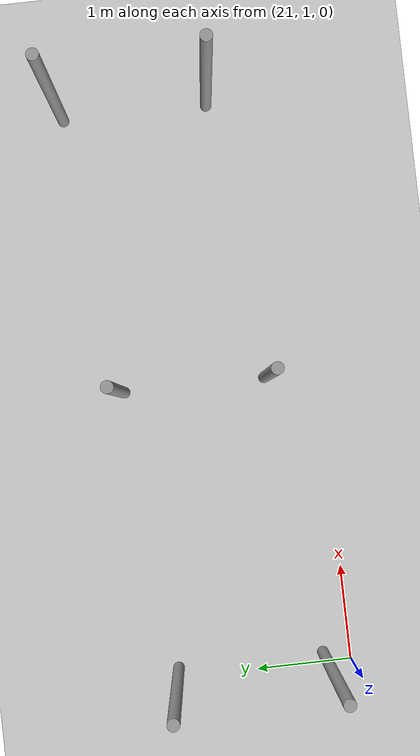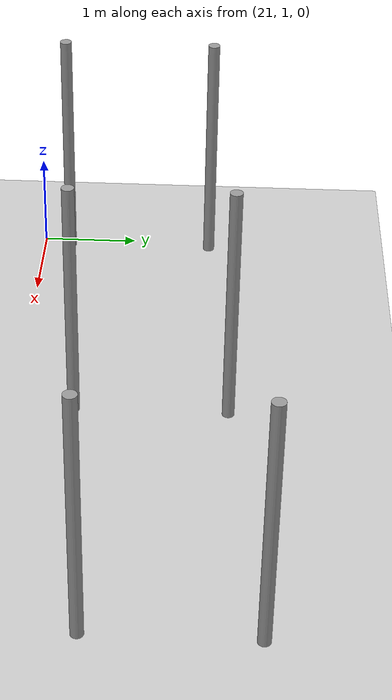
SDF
<sdf version="1.6">
 <world name="default">
  <model name="ground_plane">
   <static>1</static>
   <link name="link">
    <collision name="collision">
     <geometry><plane><normal>0 0 1</normal><size>100 100</size></plane></geometry>
     <surface><friction><ode><mu>100</mu><mu2>50</mu2></ode></friction></surface>
    </collision>
    <visual name="visual">
     <cast_shadows>0</cast_shadows>
     <geometry><plane><normal>0 0 1</normal><size>100 100</size></plane></geometry>
     <material>
      <script><uri>file://media/materials/scripts/gazebo.material</uri><name>Gazebo/Grey</name></script>
     </material>
    </visual>
   </link>
  </model>
  <model name="pole_13">
   <link name="link_0">
    <inertial>
     <mass>0.0364582</mass>
     <inertia>
      <ixx>0.00312124</ixx>
      <ixy>0</ixy>
      <ixz>0</ixz>
      <iyy>0.00312124</iyy>
      <iyz>0</iyz>
      <izz>0.00016615</izz>
     </inertia>
    </inertial>
    <visual name="visual">
     <geometry><cylinder><radius>0.06</radius><length>2.5</length></cylinder></geometry>
     <material>
      <lighting>1</lighting>
      <script><uri>file://media/materials/scripts/gazebo.material</uri><name>Gazebo/Grey</name></script>
      <ambient>0.3 0.3 0.3 1</ambient>
      <diffuse>0.7 0.7 0.7 1</diffuse>
      <specular>0.01 0.01 0.01 1</specular>
      <emissive>0 0 0 1</emissive>
      <shader type="vertex"><normal_map>__default__</normal_map></shader>
     </material>
    </visual>
    <collision name="collision">
     <geometry><cylinder><radius>0.06</radius><length>2.5</length></cylinder></geometry>
     <surface>
      <friction>
       <ode><mu>1</mu><mu2>1</mu2><fdir1>0 0 0</fdir1><slip1>0</slip1><slip2>0</slip2></ode>
       <torsional>
        <coefficient>1</coefficient>
        <patch_radius>0</patch_radius>
        <surface_radius>0</surface_radius>
        <use_patch_radius>1</use_patch_radius>
        <ode><slip>0</slip></ode>
       </torsional>
      </friction>
      <bounce><restitution_coefficient>0</restitution_coefficient><threshold>1e+06</threshold></bounce>
      <contact>
       <collide_without_contact>0</collide_without_contact>
       <collide_without_contact_bitmask>1</collide_without_contact_bitmask>
       <collide_bitmask>1</collide_bitmask>
       <ode>
        <soft_cfm>0</soft_cfm>
        <soft_erp>0.2</soft_erp>
        <kp>1e+13</kp>
        <kd>1</kd>
        <max_vel>0.01</max_vel>
        <min_depth>0</min_depth>
       </ode>
       <bullet>
        <split_impulse>1</split_impulse>
        <split_impulse_penetration_threshold>-0.01</split_impulse_penetration_threshold>
        <soft_cfm>0</soft_cfm>
        <soft_erp>0.2</soft_erp>
        <kp>1e+13</kp>
        <kd>1</kd>
       </bullet>
      </contact>
     </surface>
    </collision>
   </link>
   <static>0</static>
   <pose>21.1068 1.29024 1.24999 0 0 -0.032023</pose>
  </model>
  <model name="pole_16">
   <link name="link_0">
    <inertial>
     <mass>0.0364582</mass>
     <inertia>
      <ixx>0.00312124</ixx>
      <ixy>0</ixy>
      <ixz>0</ixz>
      <iyy>0.00312124</iyy>
      <iyz>0</iyz>
      <izz>0.00016615</izz>
     </inertia>
    </inertial>
    <visual name="visual">
     <geometry><cylinder><radius>0.06</radius><length>2.5</length></cylinder></geometry>
     <material>
      <lighting>1</lighting>
      <script><uri>file://media/materials/scripts/gazebo.material</uri><name>Gazebo/Grey</name></script>
      <ambient>0.3 0.3 0.3 1</ambient>
      <diffuse>0.7 0.7 0.7 1</diffuse>
      <specular>0.01 0.01 0.01 1</specular>
      <emissive>0 0 0 1</emissive>
      <shader type="vertex"><normal_map>__default__</normal_map></shader>
     </material>
    </visual>
    <collision name="collision">
     <geometry><cylinder><radius>0.06</radius><length>2.5</length></cylinder></geometry>
     <surface>
      <friction>
       <ode><mu>1</mu><mu2>1</mu2><fdir1>0 0 0</fdir1><slip1>0</slip1><slip2>0</slip2></ode>
       <torsional>
        <coefficient>1</coefficient>
        <patch_radius>0</patch_radius>
        <surface_radius>0</surface_radius>
        <use_patch_radius>1</use_patch_radius>
        <ode><slip>0</slip></ode>
       </torsional>
      </friction>
      <bounce><restitution_coefficient>0</restitution_coefficient><threshold>1e+06</threshold></bounce>
      <contact>
       <collide_without_contact>0</collide_without_contact>
       <collide_without_contact_bitmask>1</collide_without_contact_bitmask>
       <collide_bitmask>1</collide_bitmask>
       <ode>
        <soft_cfm>0</soft_cfm>
        <soft_erp>0.2</soft_erp>
        <kp>1e+13</kp>
        <kd>1</kd>
        <max_vel>0.01</max_vel>
        <min_depth>0</min_depth>
       </ode>
       <bullet>
        <split_impulse>1</split_impulse>
        <split_impulse_penetration_threshold>-0.01</split_impulse_penetration_threshold>
        <soft_cfm>0</soft_cfm>
        <soft_erp>0.2</soft_erp>
        <kp>1e+13</kp>
        <kd>1</kd>
       </bullet>
      </contact>
     </surface>
    </collision>
   </link>
   <static>0</static>
   <pose>21.1076 2.84023 1.25 -1e-06 -1e-06 0.04266</pose>
  </model>
  <model name="pole_18">
   <link name="link_0">
    <inertial>
     <mass>0.0364582</mass>
     <inertia>
      <ixx>0.00312124</ixx>
      <ixy>0</ixy>
      <ixz>0</ixz>
      <iyy>0.00312124</iyy>
      <iyz>0</iyz>
      <izz>0.00016615</izz>
     </inertia>
    </inertial>
    <visual name="visual">
     <geometry><cylinder><radius>0.06</radius><length>2.5</length></cylinder></geometry>
     <material>
      <lighting>1</lighting>
      <script><uri>file://media/materials/scripts/gazebo.material</uri><name>Gazebo/Grey</name></script>
      <ambient>0.3 0.3 0.3 1</ambient>
      <diffuse>0.7 0.7 0.7 1</diffuse>
      <specular>0.01 0.01 0.01 1</specular>
      <emissive>0 0 0 1</emissive>
      <shader type="vertex"><normal_map>__default__</normal_map></shader>
     </material>
    </visual>
    <collision name="collision">
     <geometry><cylinder><radius>0.06</radius><length>2.5</length></cylinder></geometry>
     <surface>
      <friction>
       <ode><mu>1</mu><mu2>1</mu2><fdir1>0 0 0</fdir1><slip1>0</slip1><slip2>0</slip2></ode>
       <torsional>
        <coefficient>1</coefficient>
        <patch_radius>0</patch_radius>
        <surface_radius>0</surface_radius>
        <use_patch_radius>1</use_patch_radius>
        <ode><slip>0</slip></ode>
       </torsional>
      </friction>
      <bounce><restitution_coefficient>0</restitution_coefficient><threshold>1e+06</threshold></bounce>
      <contact>
       <collide_without_contact>0</collide_without_contact>
       <collide_without_contact_bitmask>1</collide_without_contact_bitmask>
       <collide_bitmask>1</collide_bitmask>
       <ode>
        <soft_cfm>0</soft_cfm>
        <soft_erp>0.2</soft_erp>
        <kp>1e+13</kp>
        <kd>1</kd>
        <max_vel>0.01</max_vel>
        <min_depth>0</min_depth>
       </ode>
       <bullet>
        <split_impulse>1</split_impulse>
        <split_impulse_penetration_threshold>-0.01</split_impulse_penetration_threshold>
        <soft_cfm>0</soft_cfm>
        <soft_erp>0.2</soft_erp>
        <kp>1e+13</kp>
        <kd>1</kd>
       </bullet>
      </contact>
     </surface>
    </collision>
   </link>
   <static>0</static>
   <pose>27.1 1.89007 1.24999 -0 1e-06 -0.025754</pose>
  </model>
  <model name="pole_19">
   <link name="link_0">
    <inertial>
     <mass>0.0364582</mass>
     <inertia>
      <ixx>0.00312124</ixx>
      <ixy>0</ixy>
      <ixz>0</ixz>
      <iyy>0.00312124</iyy>
      <iyz>0</iyz>
      <izz>0.00016615</izz>
     </inertia>
    </inertial>
    <visual name="visual">
     <geometry><cylinder><radius>0.06</radius><length>2.5</length></cylinder></geometry>
     <material>
      <lighting>1</lighting>
      <script><uri>file://media/materials/scripts/gazebo.material</uri><name>Gazebo/Grey</name></script>
      <ambient>0.3 0.3 0.3 1</ambient>
      <diffuse>0.7 0.7 0.7 1</diffuse>
      <specular>0.01 0.01 0.01 1</specular>
      <emissive>0 0 0 1</emissive>
      <shader type="vertex"><normal_map>__default__</normal_map></shader>
     </material>
    </visual>
    <collision name="collision">
     <geometry><cylinder><radius>0.06</radius><length>2.5</length></cylinder></geometry>
     <surface>
      <friction>
       <ode><mu>1</mu><mu2>1</mu2><fdir1>0 0 0</fdir1><slip1>0</slip1><slip2>0</slip2></ode>
       <torsional>
        <coefficient>1</coefficient>
        <patch_radius>0</patch_radius>
        <surface_radius>0</surface_radius>
        <use_patch_radius>1</use_patch_radius>
        <ode><slip>0</slip></ode>
       </torsional>
      </friction>
      <bounce><restitution_coefficient>0</restitution_coefficient><threshold>1e+06</threshold></bounce>
      <contact>
       <collide_without_contact>0</collide_without_contact>
       <collide_without_contact_bitmask>1</collide_without_contact_bitmask>
       <collide_bitmask>1</collide_bitmask>
       <ode>
        <soft_cfm>0</soft_cfm>
        <soft_erp>0.2</soft_erp>
        <kp>1e+13</kp>
        <kd>1</kd>
        <max_vel>0.01</max_vel>
        <min_depth>0</min_depth>
       </ode>
       <bullet>
        <split_impulse>1</split_impulse>
        <split_impulse_penetration_threshold>-0.01</split_impulse_penetration_threshold>
        <soft_cfm>0</soft_cfm>
        <soft_erp>0.2</soft_erp>
        <kp>1e+13</kp>
        <kd>1</kd>
       </bullet>
      </contact>
     </surface>
    </collision>
   </link>
   <static>0</static>
   <pose>27.1 3.44009 1.24999 -0 -0 -0.29895</pose>
  </model>
  <model name="pole_21">
   <link name="link_0">
    <inertial>
     <mass>0.0364582</mass>
     <inertia>
      <ixx>0.00312124</ixx>
      <ixy>0</ixy>
      <ixz>0</ixz>
      <iyy>0.00312124</iyy>
      <iyz>0</iyz>
      <izz>0.00016615</izz>
     </inertia>
    </inertial>
    <visual name="visual">
     <geometry><cylinder><radius>0.06</radius><length>2.5</length></cylinder></geometry>
     <material>
      <lighting>1</lighting>
      <script><uri>file://media/materials/scripts/gazebo.material</uri><name>Gazebo/Grey</name></script>
      <ambient>0.3 0.3 0.3 1</ambient>
      <diffuse>0.7 0.7 0.7 1</diffuse>
      <specular>0.01 0.01 0.01 1</specular>
      <emissive>0 0 0 1</emissive>
      <shader type="vertex"><normal_map>__default__</normal_map></shader>
     </material>
    </visual>
    <collision name="collision">
     <geometry><cylinder><radius>0.06</radius><length>2.5</length></cylinder></geometry>
     <surface>
      <friction>
       <ode><mu>1</mu><mu2>1</mu2><fdir1>0 0 0</fdir1><slip1>0</slip1><slip2>0</slip2></ode>
       <torsional>
        <coefficient>1</coefficient>
        <patch_radius>0</patch_radius>
        <surface_radius>0</surface_radius>
        <use_patch_radius>1</use_patch_radius>
        <ode><slip>0</slip></ode>
       </torsional>
      </friction>
      <bounce><restitution_coefficient>0</restitution_coefficient><threshold>1e+06</threshold></bounce>
      <contact>
       <collide_without_contact>0</collide_without_contact>
       <collide_without_contact_bitmask>1</collide_without_contact_bitmask>
       <collide_bitmask>1</collide_bitmask>
       <ode>
        <soft_cfm>0</soft_cfm>
        <soft_erp>0.2</soft_erp>
        <kp>1e+13</kp>
        <kd>1</kd>
        <max_vel>0.01</max_vel>
        <min_depth>0</min_depth>
       </ode>
       <bullet>
        <split_impulse>1</split_impulse>
        <split_impulse_penetration_threshold>-0.01</split_impulse_penetration_threshold>
        <soft_cfm>0</soft_cfm>
        <soft_erp>0.2</soft_erp>
        <kp>1e+13</kp>
        <kd>1</kd>
       </bullet>
      </contact>
     </surface>
    </collision>
   </link>
   <static>0</static>
   <pose>24.1 3.10016 1.24999 0 -1e-06 -0.031318</pose>
  </model>
  <model name="pole_22">
   <link name="link_0">
    <inertial>
     <mass>0.0364582</mass>
     <inertia>
      <ixx>0.00312124</ixx>
      <ixy>0</ixy>
      <ixz>0</ixz>
      <iyy>0.00312124</iyy>
      <iyz>0</iyz>
      <izz>0.00016615</izz>
     </inertia>
    </inertial>
    <visual name="visual">
     <geometry><cylinder><radius>0.06</radius><length>2.5</length></cylinder></geometry>
     <material>
      <lighting>1</lighting>
      <script><uri>file://media/materials/scripts/gazebo.material</uri><name>Gazebo/Grey</name></script>
      <ambient>0.3 0.3 0.3 1</ambient>
      <diffuse>0.7 0.7 0.7 1</diffuse>
      <specular>0.01 0.01 0.01 1</specular>
      <emissive>0 0 0 1</emissive>
      <shader type="vertex"><normal_map>__default__</normal_map></shader>
     </material>
    </visual>
    <collision name="collision">
     <geometry><cylinder><radius>0.06</radius><length>2.5</length></cylinder></geometry>
     <surface>
      <friction>
       <ode><mu>1</mu><mu2>1</mu2><fdir1>0 0 0</fdir1><slip1>0</slip1><slip2>0</slip2></ode>
       <torsional>
        <coefficient>1</coefficient>
        <patch_radius>0</patch_radius>
        <surface_radius>0</surface_radius>
        <use_patch_radius>1</use_patch_radius>
        <ode><slip>0</slip></ode>
       </torsional>
      </friction>
      <bounce><restitution_coefficient>0</restitution_coefficient><threshold>1e+06</threshold></bounce>
      <contact>
       <collide_without_contact>0</collide_without_contact>
       <collide_without_contact_bitmask>1</collide_without_contact_bitmask>
       <collide_bitmask>1</collide_bitmask>
       <ode>
        <soft_cfm>0</soft_cfm>
        <soft_erp>0.2</soft_erp>
        <kp>1e+13</kp>
        <kd>1</kd>
        <max_vel>0.01</max_vel>
        <min_depth>0</min_depth>
       </ode>
       <bullet>
        <split_impulse>1</split_impulse>
        <split_impulse_penetration_threshold>-0.01</split_impulse_penetration_threshold>
        <soft_cfm>0</soft_cfm>
        <soft_erp>0.2</soft_erp>
        <kp>1e+13</kp>
        <kd>1</kd>
       </bullet>
      </contact>
     </surface>
    </collision>
   </link>
   <static>0</static>
   <pose>24.1 1.59019 1.24999 0 -1e-06 -0.033885</pose>
  </model>
 </world>
</sdf>
